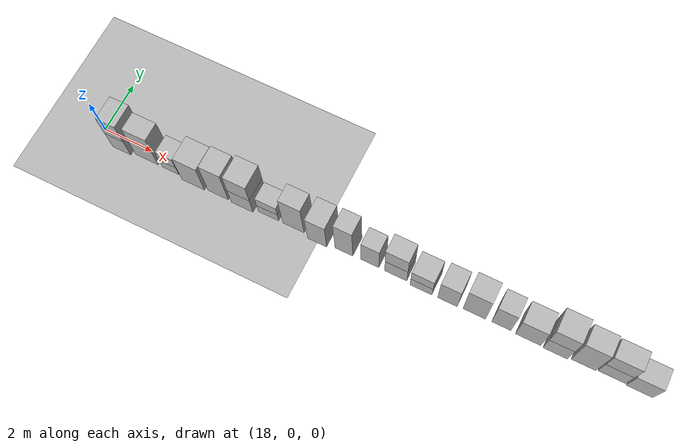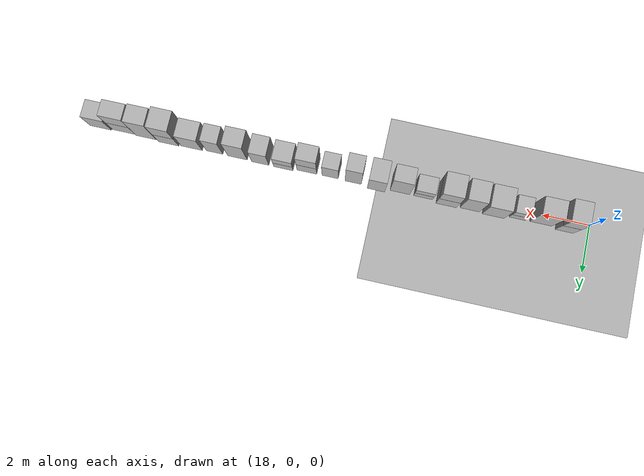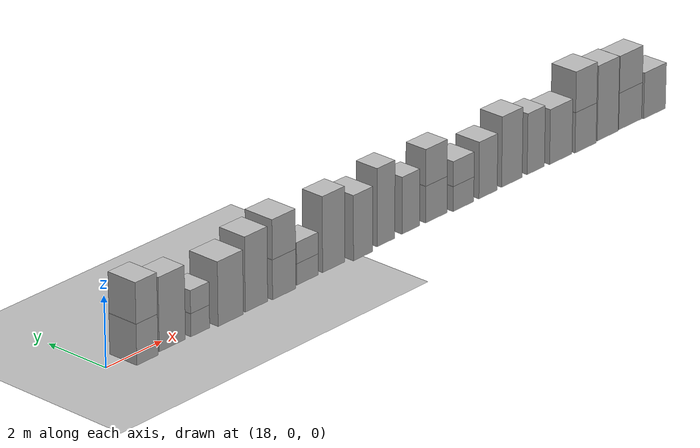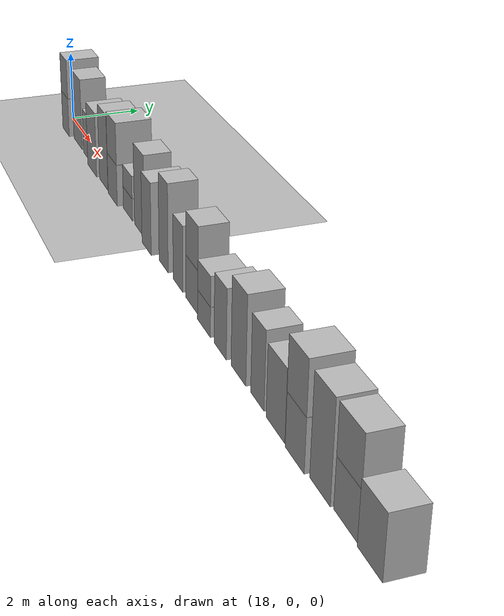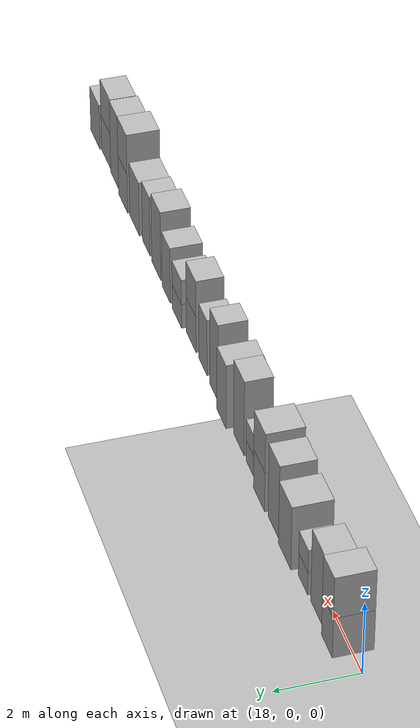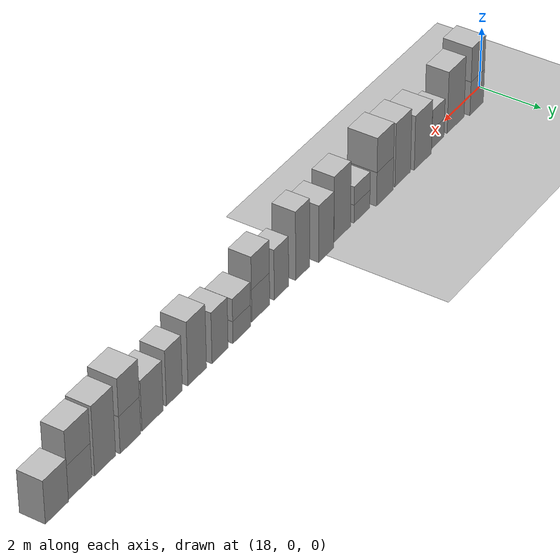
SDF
<sdf version="1.5">
 <world name="default">
  <model name="ground_plane">
   <static>true</static>
   <link name="link">
    <collision name="collision">
     <geometry><plane><normal>0 0 1</normal><size>250 250</size></plane></geometry>
     <surface><friction><ode><mu>1</mu><mu2>1</mu2></ode></friction></surface>
    </collision>
    <visual name="grass">
     <cast_shadows>false</cast_shadows>
     <geometry><mesh><uri>file://grass_plane/meshes/grass_plane.dae</uri></mesh></geometry>
    </visual>
   </link>
  </model>
  <model name="Cardboard_box_19">
   <link name="link_0">
    <pose>19 0 0 0 0 0</pose>
    <inertial>
     <mass>1</mass>
     <inertia>
      <ixx>0.166667</ixx>
      <ixy>0</ixy>
      <ixz>0</ixz>
      <iyy>0.166667</iyy>
      <iyz>0</iyz>
      <izz>0.166667</izz>
     </inertia>
    </inertial>
    <collision name="collision">
     <geometry>
      <mesh>
       <uri>model://Cardboard_box/meshes/cardboard_box.dae</uri>
       <scale>1.91554035472 2.37056957961 2.86900003002</scale>
      </mesh>
     </geometry>
    </collision>
    <visual name="visual">
     <geometry>
      <mesh>
       <uri>model://Cardboard_box/meshes/cardboard_box.dae</uri>
       <scale>1.91554035472 2.37056957961 2.86900003002</scale>
      </mesh>
     </geometry>
    </visual>
   </link>
   <static>1</static>
  </model>
  <model name="Cardboard_box_top_19">
   <link name="link_0">
    <pose>19 0 1.14760001201 0 0 0</pose>
    <inertial>
     <mass>1</mass>
     <inertia>
      <ixx>0.166667</ixx>
      <ixy>0</ixy>
      <ixz>0</ixz>
      <iyy>0.166667</iyy>
      <iyz>0</iyz>
      <izz>0.166667</izz>
     </inertia>
    </inertial>
    <collision name="collision">
     <geometry>
      <mesh>
       <uri>model://Cardboard_box/meshes/cardboard_box.dae</uri>
       <scale>1.91554035472 2.37056957961 2.86900003002</scale>
      </mesh>
     </geometry>
    </collision>
    <visual name="visual">
     <geometry>
      <mesh>
       <uri>model://Cardboard_box/meshes/cardboard_box.dae</uri>
       <scale>1.91554035472 2.37056957961 2.86900003002</scale>
      </mesh>
     </geometry>
    </visual>
   </link>
   <static>1</static>
  </model>
  <model name="Cardboard_box_20">
   <link name="link_0">
    <pose>20 0 0 0 0 0</pose>
    <inertial>
     <mass>1</mass>
     <inertia>
      <ixx>0.166667</ixx>
      <ixy>0</ixy>
      <ixz>0</ixz>
      <iyy>0.166667</iyy>
      <iyz>0</iyz>
      <izz>0.166667</izz>
     </inertia>
    </inertial>
    <collision name="collision">
     <geometry>
      <mesh>
       <uri>model://Cardboard_box/meshes/cardboard_box.dae</uri>
       <scale>2.36743544982 1.84634310597 5.19144005288</scale>
      </mesh>
     </geometry>
    </collision>
    <visual name="visual">
     <geometry>
      <mesh>
       <uri>model://Cardboard_box/meshes/cardboard_box.dae</uri>
       <scale>2.36743544982 1.84634310597 5.19144005288</scale>
      </mesh>
     </geometry>
    </visual>
   </link>
   <static>1</static>
  </model>
  <model name="Cardboard_box_21">
   <link name="link_0">
    <pose>21 0 0 0 0 0</pose>
    <inertial>
     <mass>1</mass>
     <inertia>
      <ixx>0.166667</ixx>
      <ixy>0</ixy>
      <ixz>0</ixz>
      <iyy>0.166667</iyy>
      <iyz>0</iyz>
      <izz>0.166667</izz>
     </inertia>
    </inertial>
    <collision name="collision">
     <geometry>
      <mesh>
       <uri>model://Cardboard_box/meshes/cardboard_box.dae</uri>
       <scale>1.70943730668 1.8856525622 1.61784941243</scale>
      </mesh>
     </geometry>
    </collision>
    <visual name="visual">
     <geometry>
      <mesh>
       <uri>model://Cardboard_box/meshes/cardboard_box.dae</uri>
       <scale>1.70943730668 1.8856525622 1.61784941243</scale>
      </mesh>
     </geometry>
    </visual>
   </link>
   <static>1</static>
  </model>
  <model name="Cardboard_box_top_21">
   <link name="link_0">
    <pose>21 0 0.647139764974 0 0 0</pose>
    <inertial>
     <mass>1</mass>
     <inertia>
      <ixx>0.166667</ixx>
      <ixy>0</ixy>
      <ixz>0</ixz>
      <iyy>0.166667</iyy>
      <iyz>0</iyz>
      <izz>0.166667</izz>
     </inertia>
    </inertial>
    <collision name="collision">
     <geometry>
      <mesh>
       <uri>model://Cardboard_box/meshes/cardboard_box.dae</uri>
       <scale>1.70943730668 1.8856525622 1.61784941243</scale>
      </mesh>
     </geometry>
    </collision>
    <visual name="visual">
     <geometry>
      <mesh>
       <uri>model://Cardboard_box/meshes/cardboard_box.dae</uri>
       <scale>1.70943730668 1.8856525622 1.61784941243</scale>
      </mesh>
     </geometry>
    </visual>
   </link>
   <static>1</static>
  </model>
  <model name="Cardboard_box_22">
   <link name="link_0">
    <pose>22 0 0 0 0 0</pose>
    <inertial>
     <mass>1</mass>
     <inertia>
      <ixx>0.166667</ixx>
      <ixy>0</ixy>
      <ixz>0</ixz>
      <iyy>0.166667</iyy>
      <iyz>0</iyz>
      <izz>0.166667</izz>
     </inertia>
    </inertial>
    <collision name="collision">
     <geometry>
      <mesh>
       <uri>model://Cardboard_box/meshes/cardboard_box.dae</uri>
       <scale>2.33781652001 2.43626281952 4.55844310823</scale>
      </mesh>
     </geometry>
    </collision>
    <visual name="visual">
     <geometry>
      <mesh>
       <uri>model://Cardboard_box/meshes/cardboard_box.dae</uri>
       <scale>2.33781652001 2.43626281952 4.55844310823</scale>
      </mesh>
     </geometry>
    </visual>
   </link>
   <static>1</static>
  </model>
  <model name="Cardboard_box_23">
   <link name="link_0">
    <pose>23 0 0 0 0 0</pose>
    <inertial>
     <mass>1</mass>
     <inertia>
      <ixx>0.166667</ixx>
      <ixy>0</ixy>
      <ixz>0</ixz>
      <iyy>0.166667</iyy>
      <iyz>0</iyz>
      <izz>0.166667</izz>
     </inertia>
    </inertial>
    <collision name="collision">
     <geometry>
      <mesh>
       <uri>model://Cardboard_box/meshes/cardboard_box.dae</uri>
       <scale>2.08666622004 2.19161100126 5.31379006461</scale>
      </mesh>
     </geometry>
    </collision>
    <visual name="visual">
     <geometry>
      <mesh>
       <uri>model://Cardboard_box/meshes/cardboard_box.dae</uri>
       <scale>2.08666622004 2.19161100126 5.31379006461</scale>
      </mesh>
     </geometry>
    </visual>
   </link>
   <static>1</static>
  </model>
  <model name="Cardboard_box_24">
   <link name="link_0">
    <pose>24 0 0 0 0 0</pose>
    <inertial>
     <mass>1</mass>
     <inertia>
      <ixx>0.166667</ixx>
      <ixy>0</ixy>
      <ixz>0</ixz>
      <iyy>0.166667</iyy>
      <iyz>0</iyz>
      <izz>0.166667</izz>
     </inertia>
    </inertial>
    <collision name="collision">
     <geometry>
      <mesh>
       <uri>model://Cardboard_box/meshes/cardboard_box.dae</uri>
       <scale>2.19366457934 2.35481018383 2.83027408389</scale>
      </mesh>
     </geometry>
    </collision>
    <visual name="visual">
     <geometry>
      <mesh>
       <uri>model://Cardboard_box/meshes/cardboard_box.dae</uri>
       <scale>2.19366457934 2.35481018383 2.83027408389</scale>
      </mesh>
     </geometry>
    </visual>
   </link>
   <static>1</static>
  </model>
  <model name="Cardboard_box_top_24">
   <link name="link_0">
    <pose>24 0 1.13210963356 0 0 0</pose>
    <inertial>
     <mass>1</mass>
     <inertia>
      <ixx>0.166667</ixx>
      <ixy>0</ixy>
      <ixz>0</ixz>
      <iyy>0.166667</iyy>
      <iyz>0</iyz>
      <izz>0.166667</izz>
     </inertia>
    </inertial>
    <collision name="collision">
     <geometry>
      <mesh>
       <uri>model://Cardboard_box/meshes/cardboard_box.dae</uri>
       <scale>2.19366457934 2.35481018383 2.83027408389</scale>
      </mesh>
     </geometry>
    </collision>
    <visual name="visual">
     <geometry>
      <mesh>
       <uri>model://Cardboard_box/meshes/cardboard_box.dae</uri>
       <scale>2.19366457934 2.35481018383 2.83027408389</scale>
      </mesh>
     </geometry>
    </visual>
   </link>
   <static>1</static>
  </model>
  <model name="Cardboard_box_25">
   <link name="link_0">
    <pose>25 0 0 0 0 0</pose>
    <inertial>
     <mass>1</mass>
     <inertia>
      <ixx>0.166667</ixx>
      <ixy>0</ixy>
      <ixz>0</ixz>
      <iyy>0.166667</iyy>
      <iyz>0</iyz>
      <izz>0.166667</izz>
     </inertia>
    </inertial>
    <collision name="collision">
     <geometry>
      <mesh>
       <uri>model://Cardboard_box/meshes/cardboard_box.dae</uri>
       <scale>2.05215036255 1.76981936672 1.51666240016</scale>
      </mesh>
     </geometry>
    </collision>
    <visual name="visual">
     <geometry>
      <mesh>
       <uri>model://Cardboard_box/meshes/cardboard_box.dae</uri>
       <scale>2.05215036255 1.76981936672 1.51666240016</scale>
      </mesh>
     </geometry>
    </visual>
   </link>
   <static>1</static>
  </model>
  <model name="Cardboard_box_top_25">
   <link name="link_0">
    <pose>25 0 0.606664960063 0 0 0</pose>
    <inertial>
     <mass>1</mass>
     <inertia>
      <ixx>0.166667</ixx>
      <ixy>0</ixy>
      <ixz>0</ixz>
      <iyy>0.166667</iyy>
      <iyz>0</iyz>
      <izz>0.166667</izz>
     </inertia>
    </inertial>
    <collision name="collision">
     <geometry>
      <mesh>
       <uri>model://Cardboard_box/meshes/cardboard_box.dae</uri>
       <scale>2.05215036255 1.76981936672 1.51666240016</scale>
      </mesh>
     </geometry>
    </collision>
    <visual name="visual">
     <geometry>
      <mesh>
       <uri>model://Cardboard_box/meshes/cardboard_box.dae</uri>
       <scale>2.05215036255 1.76981936672 1.51666240016</scale>
      </mesh>
     </geometry>
    </visual>
   </link>
   <static>1</static>
  </model>
  <model name="Cardboard_box_26">
   <link name="link_0">
    <pose>26 0 0 0 0 0</pose>
    <inertial>
     <mass>1</mass>
     <inertia>
      <ixx>0.166667</ixx>
      <ixy>0</ixy>
      <ixz>0</ixz>
      <iyy>0.166667</iyy>
      <iyz>0</iyz>
      <izz>0.166667</izz>
     </inertia>
    </inertial>
    <collision name="collision">
     <geometry>
      <mesh>
       <uri>model://Cardboard_box/meshes/cardboard_box.dae</uri>
       <scale>2.12770194368 1.751000371 5.44032543961</scale>
      </mesh>
     </geometry>
    </collision>
    <visual name="visual">
     <geometry>
      <mesh>
       <uri>model://Cardboard_box/meshes/cardboard_box.dae</uri>
       <scale>2.12770194368 1.751000371 5.44032543961</scale>
      </mesh>
     </geometry>
    </visual>
   </link>
   <static>1</static>
  </model>
  <model name="Cardboard_box_27">
   <link name="link_0">
    <pose>27 0 0 0 0 0</pose>
    <inertial>
     <mass>1</mass>
     <inertia>
      <ixx>0.166667</ixx>
      <ixy>0</ixy>
      <ixz>0</ixz>
      <iyy>0.166667</iyy>
      <iyz>0</iyz>
      <izz>0.166667</izz>
     </inertia>
    </inertial>
    <collision name="collision">
     <geometry>
      <mesh>
       <uri>model://Cardboard_box/meshes/cardboard_box.dae</uri>
       <scale>1.88598576268 2.37046205652 4.6932343426</scale>
      </mesh>
     </geometry>
    </collision>
    <visual name="visual">
     <geometry>
      <mesh>
       <uri>model://Cardboard_box/meshes/cardboard_box.dae</uri>
       <scale>1.88598576268 2.37046205652 4.6932343426</scale>
      </mesh>
     </geometry>
    </visual>
   </link>
   <static>1</static>
  </model>
  <model name="Cardboard_box_28">
   <link name="link_0">
    <pose>28 0 0 0 0 0</pose>
    <inertial>
     <mass>1</mass>
     <inertia>
      <ixx>0.166667</ixx>
      <ixy>0</ixy>
      <ixz>0</ixz>
      <iyy>0.166667</iyy>
      <iyz>0</iyz>
      <izz>0.166667</izz>
     </inertia>
    </inertial>
    <collision name="collision">
     <geometry>
      <mesh>
       <uri>model://Cardboard_box/meshes/cardboard_box.dae</uri>
       <scale>1.74868177611 1.83453759061 5.6431837928</scale>
      </mesh>
     </geometry>
    </collision>
    <visual name="visual">
     <geometry>
      <mesh>
       <uri>model://Cardboard_box/meshes/cardboard_box.dae</uri>
       <scale>1.74868177611 1.83453759061 5.6431837928</scale>
      </mesh>
     </geometry>
    </visual>
   </link>
   <static>1</static>
  </model>
  <model name="Cardboard_box_29">
   <link name="link_0">
    <pose>29 0 0 0 0 0</pose>
    <inertial>
     <mass>1</mass>
     <inertia>
      <ixx>0.166667</ixx>
      <ixy>0</ixy>
      <ixz>0</ixz>
      <iyy>0.166667</iyy>
      <iyz>0</iyz>
      <izz>0.166667</izz>
     </inertia>
    </inertial>
    <collision name="collision">
     <geometry>
      <mesh>
       <uri>model://Cardboard_box/meshes/cardboard_box.dae</uri>
       <scale>1.75125976489 1.72015743711 4.1288183236</scale>
      </mesh>
     </geometry>
    </collision>
    <visual name="visual">
     <geometry>
      <mesh>
       <uri>model://Cardboard_box/meshes/cardboard_box.dae</uri>
       <scale>1.75125976489 1.72015743711 4.1288183236</scale>
      </mesh>
     </geometry>
    </visual>
   </link>
   <static>1</static>
  </model>
  <model name="Cardboard_box_30">
   <link name="link_0">
    <pose>30 0 0 0 0 0</pose>
    <inertial>
     <mass>1</mass>
     <inertia>
      <ixx>0.166667</ixx>
      <ixy>0</ixy>
      <ixz>0</ixz>
      <iyy>0.166667</iyy>
      <iyz>0</iyz>
      <izz>0.166667</izz>
     </inertia>
    </inertial>
    <collision name="collision">
     <geometry>
      <mesh>
       <uri>model://Cardboard_box/meshes/cardboard_box.dae</uri>
       <scale>2.14139844819 1.75248390615 2.66043584505</scale>
      </mesh>
     </geometry>
    </collision>
    <visual name="visual">
     <geometry>
      <mesh>
       <uri>model://Cardboard_box/meshes/cardboard_box.dae</uri>
       <scale>2.14139844819 1.75248390615 2.66043584505</scale>
      </mesh>
     </geometry>
    </visual>
   </link>
   <static>1</static>
  </model>
  <model name="Cardboard_box_top_30">
   <link name="link_0">
    <pose>30 0 1.06417433802 0 0 0</pose>
    <inertial>
     <mass>1</mass>
     <inertia>
      <ixx>0.166667</ixx>
      <ixy>0</ixy>
      <ixz>0</ixz>
      <iyy>0.166667</iyy>
      <iyz>0</iyz>
      <izz>0.166667</izz>
     </inertia>
    </inertial>
    <collision name="collision">
     <geometry>
      <mesh>
       <uri>model://Cardboard_box/meshes/cardboard_box.dae</uri>
       <scale>2.14139844819 1.75248390615 2.66043584505</scale>
      </mesh>
     </geometry>
    </collision>
    <visual name="visual">
     <geometry>
      <mesh>
       <uri>model://Cardboard_box/meshes/cardboard_box.dae</uri>
       <scale>2.14139844819 1.75248390615 2.66043584505</scale>
      </mesh>
     </geometry>
    </visual>
   </link>
   <static>1</static>
  </model>
  <model name="Cardboard_box_31">
   <link name="link_0">
    <pose>31 0 0 0 0 0</pose>
    <inertial>
     <mass>1</mass>
     <inertia>
      <ixx>0.166667</ixx>
      <ixy>0</ixy>
      <ixz>0</ixz>
      <iyy>0.166667</iyy>
      <iyz>0</iyz>
      <izz>0.166667</izz>
     </inertia>
    </inertial>
    <collision name="collision">
     <geometry>
      <mesh>
       <uri>model://Cardboard_box/meshes/cardboard_box.dae</uri>
       <scale>2.09177531559 2.11767020361 1.81563141602</scale>
      </mesh>
     </geometry>
    </collision>
    <visual name="visual">
     <geometry>
      <mesh>
       <uri>model://Cardboard_box/meshes/cardboard_box.dae</uri>
       <scale>2.09177531559 2.11767020361 1.81563141602</scale>
      </mesh>
     </geometry>
    </visual>
   </link>
   <static>1</static>
  </model>
  <model name="Cardboard_box_top_31">
   <link name="link_0">
    <pose>31 0 0.726252566409 0 0 0</pose>
    <inertial>
     <mass>1</mass>
     <inertia>
      <ixx>0.166667</ixx>
      <ixy>0</ixy>
      <ixz>0</ixz>
      <iyy>0.166667</iyy>
      <iyz>0</iyz>
      <izz>0.166667</izz>
     </inertia>
    </inertial>
    <collision name="collision">
     <geometry>
      <mesh>
       <uri>model://Cardboard_box/meshes/cardboard_box.dae</uri>
       <scale>2.09177531559 2.11767020361 1.81563141602</scale>
      </mesh>
     </geometry>
    </collision>
    <visual name="visual">
     <geometry>
      <mesh>
       <uri>model://Cardboard_box/meshes/cardboard_box.dae</uri>
       <scale>2.09177531559 2.11767020361 1.81563141602</scale>
      </mesh>
     </geometry>
    </visual>
   </link>
   <static>1</static>
  </model>
  <model name="Cardboard_box_32">
   <link name="link_0">
    <pose>32 0 0 0 0 0</pose>
    <inertial>
     <mass>1</mass>
     <inertia>
      <ixx>0.166667</ixx>
      <ixy>0</ixy>
      <ixz>0</ixz>
      <iyy>0.166667</iyy>
      <iyz>0</iyz>
      <izz>0.166667</izz>
     </inertia>
    </inertial>
    <collision name="collision">
     <geometry>
      <mesh>
       <uri>model://Cardboard_box/meshes/cardboard_box.dae</uri>
       <scale>1.86193440357 2.08441580424 4.15567653439</scale>
      </mesh>
     </geometry>
    </collision>
    <visual name="visual">
     <geometry>
      <mesh>
       <uri>model://Cardboard_box/meshes/cardboard_box.dae</uri>
       <scale>1.86193440357 2.08441580424 4.15567653439</scale>
      </mesh>
     </geometry>
    </visual>
   </link>
   <static>1</static>
  </model>
  <model name="Cardboard_box_33">
   <link name="link_0">
    <pose>33 0 0 0 0 0</pose>
    <inertial>
     <mass>1</mass>
     <inertia>
      <ixx>0.166667</ixx>
      <ixy>0</ixy>
      <ixz>0</ixz>
      <iyy>0.166667</iyy>
      <iyz>0</iyz>
      <izz>0.166667</izz>
     </inertia>
    </inertial>
    <collision name="collision">
     <geometry>
      <mesh>
       <uri>model://Cardboard_box/meshes/cardboard_box.dae</uri>
       <scale>2.1162587803 1.95308360513 5.17722210748</scale>
      </mesh>
     </geometry>
    </collision>
    <visual name="visual">
     <geometry>
      <mesh>
       <uri>model://Cardboard_box/meshes/cardboard_box.dae</uri>
       <scale>2.1162587803 1.95308360513 5.17722210748</scale>
      </mesh>
     </geometry>
    </visual>
   </link>
   <static>1</static>
  </model>
  <model name="Cardboard_box_34">
   <link name="link_0">
    <pose>34 0 0 0 0 0</pose>
    <inertial>
     <mass>1</mass>
     <inertia>
      <ixx>0.166667</ixx>
      <ixy>0</ixy>
      <ixz>0</ixz>
      <iyy>0.166667</iyy>
      <iyz>0</iyz>
      <izz>0.166667</izz>
     </inertia>
    </inertial>
    <collision name="collision">
     <geometry>
      <mesh>
       <uri>model://Cardboard_box/meshes/cardboard_box.dae</uri>
       <scale>1.79598202193 1.87553962446 4.48940899483</scale>
      </mesh>
     </geometry>
    </collision>
    <visual name="visual">
     <geometry>
      <mesh>
       <uri>model://Cardboard_box/meshes/cardboard_box.dae</uri>
       <scale>1.79598202193 1.87553962446 4.48940899483</scale>
      </mesh>
     </geometry>
    </visual>
   </link>
   <static>1</static>
  </model>
  <model name="Cardboard_box_35">
   <link name="link_0">
    <pose>35 0 0 0 0 0</pose>
    <inertial>
     <mass>1</mass>
     <inertia>
      <ixx>0.166667</ixx>
      <ixy>0</ixy>
      <ixz>0</ixz>
      <iyy>0.166667</iyy>
      <iyz>0</iyz>
      <izz>0.166667</izz>
     </inertia>
    </inertial>
    <collision name="collision">
     <geometry>
      <mesh>
       <uri>model://Cardboard_box/meshes/cardboard_box.dae</uri>
       <scale>2.34349919134 2.02888307997 4.06974278349</scale>
      </mesh>
     </geometry>
    </collision>
    <visual name="visual">
     <geometry>
      <mesh>
       <uri>model://Cardboard_box/meshes/cardboard_box.dae</uri>
       <scale>2.34349919134 2.02888307997 4.06974278349</scale>
      </mesh>
     </geometry>
    </visual>
   </link>
   <static>1</static>
  </model>
  <model name="Cardboard_box_36">
   <link name="link_0">
    <pose>36 0 0 0 0 0</pose>
    <inertial>
     <mass>1</mass>
     <inertia>
      <ixx>0.166667</ixx>
      <ixy>0</ixy>
      <ixz>0</ixz>
      <iyy>0.166667</iyy>
      <iyz>0</iyz>
      <izz>0.166667</izz>
     </inertia>
    </inertial>
    <collision name="collision">
     <geometry>
      <mesh>
       <uri>model://Cardboard_box/meshes/cardboard_box.dae</uri>
       <scale>2.2312055515 2.18075041542 2.99650306142</scale>
      </mesh>
     </geometry>
    </collision>
    <visual name="visual">
     <geometry>
      <mesh>
       <uri>model://Cardboard_box/meshes/cardboard_box.dae</uri>
       <scale>2.2312055515 2.18075041542 2.99650306142</scale>
      </mesh>
     </geometry>
    </visual>
   </link>
   <static>1</static>
  </model>
  <model name="Cardboard_box_top_36">
   <link name="link_0">
    <pose>36 0 1.19860122457 0 0 0</pose>
    <inertial>
     <mass>1</mass>
     <inertia>
      <ixx>0.166667</ixx>
      <ixy>0</ixy>
      <ixz>0</ixz>
      <iyy>0.166667</iyy>
      <iyz>0</iyz>
      <izz>0.166667</izz>
     </inertia>
    </inertial>
    <collision name="collision">
     <geometry>
      <mesh>
       <uri>model://Cardboard_box/meshes/cardboard_box.dae</uri>
       <scale>2.2312055515 2.18075041542 2.99650306142</scale>
      </mesh>
     </geometry>
    </collision>
    <visual name="visual">
     <geometry>
      <mesh>
       <uri>model://Cardboard_box/meshes/cardboard_box.dae</uri>
       <scale>2.2312055515 2.18075041542 2.99650306142</scale>
      </mesh>
     </geometry>
    </visual>
   </link>
   <static>1</static>
  </model>
  <model name="Cardboard_box_37">
   <link name="link_0">
    <pose>37 0 0 0 0 0</pose>
    <inertial>
     <mass>1</mass>
     <inertia>
      <ixx>0.166667</ixx>
      <ixy>0</ixy>
      <ixz>0</ixz>
      <iyy>0.166667</iyy>
      <iyz>0</iyz>
      <izz>0.166667</izz>
     </inertia>
    </inertial>
    <collision name="collision">
     <geometry>
      <mesh>
       <uri>model://Cardboard_box/meshes/cardboard_box.dae</uri>
       <scale>2.23845692202 1.90047698915 5.58903785789</scale>
      </mesh>
     </geometry>
    </collision>
    <visual name="visual">
     <geometry>
      <mesh>
       <uri>model://Cardboard_box/meshes/cardboard_box.dae</uri>
       <scale>2.23845692202 1.90047698915 5.58903785789</scale>
      </mesh>
     </geometry>
    </visual>
   </link>
   <static>1</static>
  </model>
  <model name="Cardboard_box_38">
   <link name="link_0">
    <pose>38 0 0 0 0 0</pose>
    <inertial>
     <mass>1</mass>
     <inertia>
      <ixx>0.166667</ixx>
      <ixy>0</ixy>
      <ixz>0</ixz>
      <iyy>0.166667</iyy>
      <iyz>0</iyz>
      <izz>0.166667</izz>
     </inertia>
    </inertial>
    <collision name="collision">
     <geometry>
      <mesh>
       <uri>model://Cardboard_box/meshes/cardboard_box.dae</uri>
       <scale>2.48442879643 1.73628067089 2.74239756951</scale>
      </mesh>
     </geometry>
    </collision>
    <visual name="visual">
     <geometry>
      <mesh>
       <uri>model://Cardboard_box/meshes/cardboard_box.dae</uri>
       <scale>2.48442879643 1.73628067089 2.74239756951</scale>
      </mesh>
     </geometry>
    </visual>
   </link>
   <static>1</static>
  </model>
  <model name="Cardboard_box_top_38">
   <link name="link_0">
    <pose>38 0 1.0969590278 0 0 0</pose>
    <inertial>
     <mass>1</mass>
     <inertia>
      <ixx>0.166667</ixx>
      <ixy>0</ixy>
      <ixz>0</ixz>
      <iyy>0.166667</iyy>
      <iyz>0</iyz>
      <izz>0.166667</izz>
     </inertia>
    </inertial>
    <collision name="collision">
     <geometry>
      <mesh>
       <uri>model://Cardboard_box/meshes/cardboard_box.dae</uri>
       <scale>2.48442879643 1.73628067089 2.74239756951</scale>
      </mesh>
     </geometry>
    </collision>
    <visual name="visual">
     <geometry>
      <mesh>
       <uri>model://Cardboard_box/meshes/cardboard_box.dae</uri>
       <scale>2.48442879643 1.73628067089 2.74239756951</scale>
      </mesh>
     </geometry>
    </visual>
   </link>
   <static>1</static>
  </model>
  <model name="Cardboard_box_39">
   <link name="link_0">
    <pose>39 0 0 0 0 0</pose>
    <inertial>
     <mass>1</mass>
     <inertia>
      <ixx>0.166667</ixx>
      <ixy>0</ixy>
      <ixz>0</ixz>
      <iyy>0.166667</iyy>
      <iyz>0</iyz>
      <izz>0.166667</izz>
     </inertia>
    </inertial>
    <collision name="collision">
     <geometry>
      <mesh>
       <uri>model://Cardboard_box/meshes/cardboard_box.dae</uri>
       <scale>2.36988516869 1.93261764654 3.4473049675</scale>
      </mesh>
     </geometry>
    </collision>
    <visual name="visual">
     <geometry>
      <mesh>
       <uri>model://Cardboard_box/meshes/cardboard_box.dae</uri>
       <scale>2.36988516869 1.93261764654 3.4473049675</scale>
      </mesh>
     </geometry>
    </visual>
   </link>
   <static>1</static>
  </model>
 </world>
</sdf>
